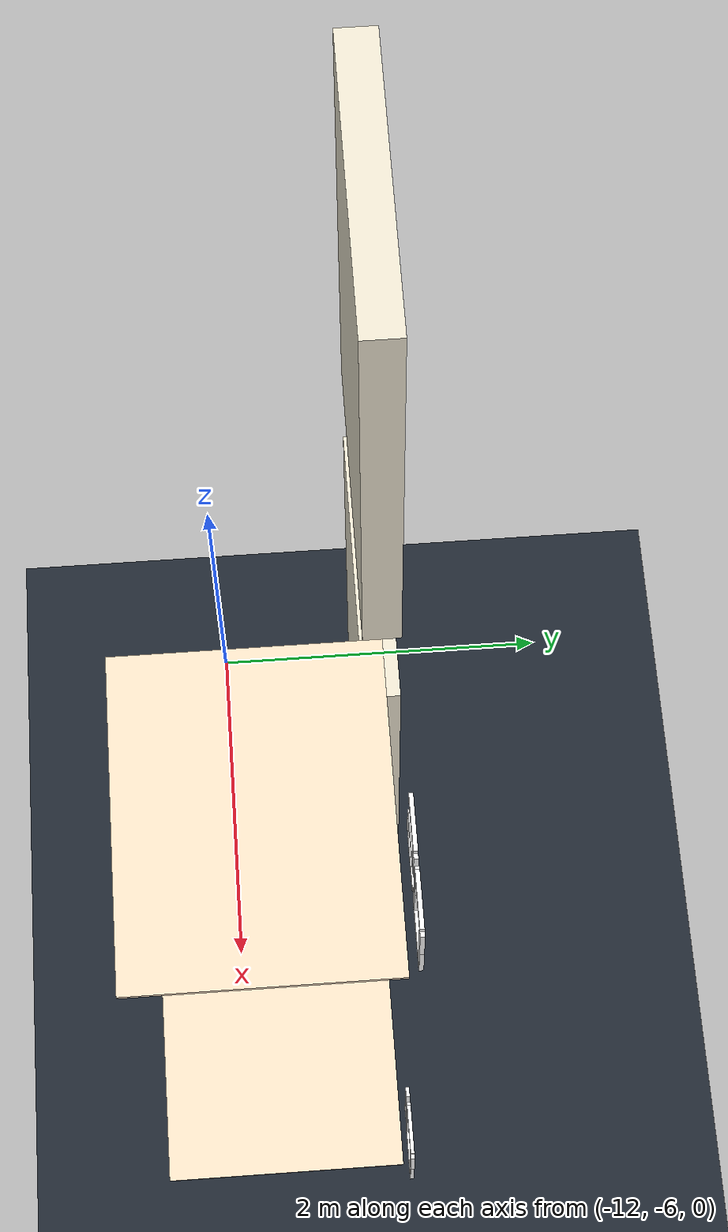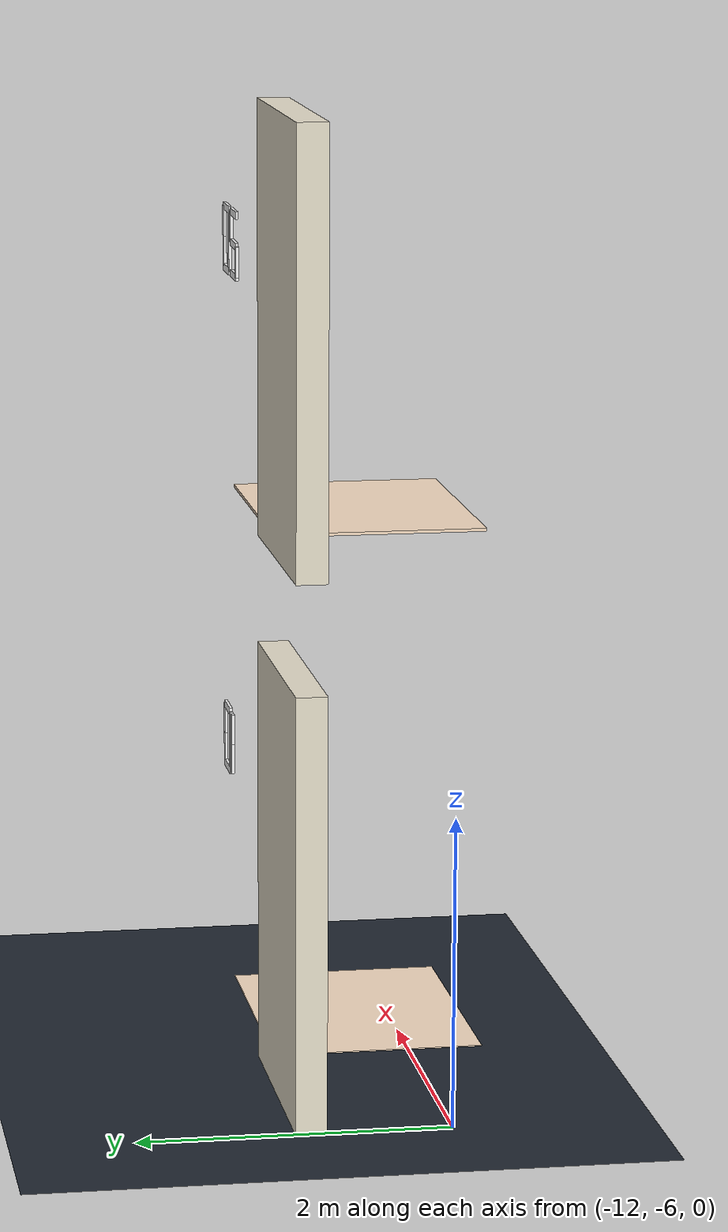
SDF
<sdf version="1.6">
 <world name="hotel_two_floor">
  <model name="ground_plane">
   <static>true</static>
   <link name="link">
    <collision name="col">
     <geometry><plane><normal>0 0 1</normal><size>100 100</size></plane></geometry>
    </collision>
    <visual name="vis">
     <geometry><plane><normal>0 0 1</normal><size>100 100</size></plane></geometry>
     <material><ambient>0.13 0.16 0.20 1</ambient><diffuse>0.13 0.16 0.20 1</diffuse></material>
    </visual>
   </link>
  </model>
  <model name="f1_seg_s_0">
   <static>true</static>
   <pose>-11.2000 -5.1000 1.4000 0 0 0</pose>
   <link name="link">
    <collision name="col"><geometry><box><size>1.6000 0.2000 2.8000</size></box></geometry></collision>
    <visual name="vis">
     <geometry><box><size>1.6000 0.2000 2.8000</size></box></geometry>
     <material>
      <ambient>0.93 0.90 0.82 1</ambient>
      <diffuse>0.93 0.90 0.82 1</diffuse>
      <specular>0.10 0.10 0.10 1</specular>
     </material>
    </visual>
   </link>
  </model>
  <model name="f1_pad_s_0">
   <static>true</static>
   <pose>-9.5000 -5.8000 -0.0100 0 0 0</pose>
   <link name="link">
    <visual name="vis">
     <geometry><box><size>1.8000 1.4000 0.0200</size></box></geometry>
     <material>
      <ambient>0.99 0.89 0.78 1</ambient>
      <diffuse>0.99 0.89 0.78 1</diffuse>
      <specular>0.10 0.10 0.10 1</specular>
     </material>
    </visual>
   </link>
  </model>
  <model name="f1_room_s_101_0_b">
   <static>true</static>
   <pose>-8.5100 -5.1000 1.7550 0 0 0</pose>
   <link name="link">
    <visual name="vis">
     <geometry><box><size>0.0500 0.0200 0.2100</size></box></geometry>
     <material>
      <ambient>0.98 0.98 0.98 1</ambient>
      <diffuse>0.98 0.98 0.98 1</diffuse>
      <specular>0.20 0.20 0.20 1</specular>
     </material>
    </visual>
   </link>
  </model>
  <model name="f1_room_s_101_0_c">
   <static>true</static>
   <pose>-8.5100 -5.1000 1.5450 0 0 0</pose>
   <link name="link">
    <visual name="vis">
     <geometry><box><size>0.0500 0.0200 0.2100</size></box></geometry>
     <material>
      <ambient>0.98 0.98 0.98 1</ambient>
      <diffuse>0.98 0.98 0.98 1</diffuse>
      <specular>0.20 0.20 0.20 1</specular>
     </material>
    </visual>
   </link>
  </model>
  <model name="f1_room_s_101_1_a">
   <static>true</static>
   <pose>-8.3000 -5.1000 1.8600 0 0 0</pose>
   <link name="link">
    <visual name="vis">
     <geometry><box><size>0.2600 0.0200 0.0500</size></box></geometry>
     <material>
      <ambient>0.98 0.98 0.98 1</ambient>
      <diffuse>0.98 0.98 0.98 1</diffuse>
      <specular>0.20 0.20 0.20 1</specular>
     </material>
    </visual>
   </link>
  </model>
  <model name="f1_room_s_101_1_b">
   <static>true</static>
   <pose>-8.1700 -5.1000 1.7550 0 0 0</pose>
   <link name="link">
    <visual name="vis">
     <geometry><box><size>0.0500 0.0200 0.2100</size></box></geometry>
     <material>
      <ambient>0.98 0.98 0.98 1</ambient>
      <diffuse>0.98 0.98 0.98 1</diffuse>
      <specular>0.20 0.20 0.20 1</specular>
     </material>
    </visual>
   </link>
  </model>
  <model name="f1_room_s_101_1_c">
   <static>true</static>
   <pose>-8.1700 -5.1000 1.5450 0 0 0</pose>
   <link name="link">
    <visual name="vis">
     <geometry><box><size>0.0500 0.0200 0.2100</size></box></geometry>
     <material>
      <ambient>0.98 0.98 0.98 1</ambient>
      <diffuse>0.98 0.98 0.98 1</diffuse>
      <specular>0.20 0.20 0.20 1</specular>
     </material>
    </visual>
   </link>
  </model>
  <model name="f1_room_s_101_1_f">
   <static>true</static>
   <pose>-8.4300 -5.1000 1.7550 0 0 0</pose>
   <link name="link">
    <visual name="vis">
     <geometry><box><size>0.0500 0.0200 0.2100</size></box></geometry>
     <material>
      <ambient>0.98 0.98 0.98 1</ambient>
      <diffuse>0.98 0.98 0.98 1</diffuse>
      <specular>0.20 0.20 0.20 1</specular>
     </material>
    </visual>
   </link>
  </model>
  <model name="f1_room_s_101_1_e">
   <static>true</static>
   <pose>-8.4300 -5.1000 1.5450 0 0 0</pose>
   <link name="link">
    <visual name="vis">
     <geometry><box><size>0.0500 0.0200 0.2100</size></box></geometry>
     <material>
      <ambient>0.98 0.98 0.98 1</ambient>
      <diffuse>0.98 0.98 0.98 1</diffuse>
      <specular>0.20 0.20 0.20 1</specular>
     </material>
    </visual>
   </link>
  </model>
  <model name="f1_room_s_101_1_d">
   <static>true</static>
   <pose>-8.3000 -5.1000 1.4400 0 0 0</pose>
   <link name="link">
    <visual name="vis">
     <geometry><box><size>0.2600 0.0200 0.0500</size></box></geometry>
     <material>
      <ambient>0.98 0.98 0.98 1</ambient>
      <diffuse>0.98 0.98 0.98 1</diffuse>
      <specular>0.20 0.20 0.20 1</specular>
     </material>
    </visual>
   </link>
  </model>
  <model name="f2_seg_s_0">
   <static>true</static>
   <pose>-11.2000 -5.1000 4.9000 0 0 0</pose>
   <link name="link">
    <collision name="col"><geometry><box><size>1.6000 0.2000 2.8000</size></box></geometry></collision>
    <visual name="vis">
     <geometry><box><size>1.6000 0.2000 2.8000</size></box></geometry>
     <material>
      <ambient>0.93 0.90 0.82 1</ambient>
      <diffuse>0.93 0.90 0.82 1</diffuse>
      <specular>0.10 0.10 0.10 1</specular>
     </material>
    </visual>
   </link>
  </model>
  <model name="f2_pad_s_0">
   <static>true</static>
   <pose>-9.5000 -5.8000 3.4900 0 0 0</pose>
   <link name="link">
    <visual name="vis">
     <geometry><box><size>1.8000 1.4000 0.0200</size></box></geometry>
     <material>
      <ambient>0.99 0.89 0.78 1</ambient>
      <diffuse>0.99 0.89 0.78 1</diffuse>
      <specular>0.10 0.10 0.10 1</specular>
     </material>
    </visual>
   </link>
  </model>
  <model name="f2_room_s_201_0_a">
   <static>true</static>
   <pose>-8.6400 -5.1000 5.3600 0 0 0</pose>
   <link name="link">
    <visual name="vis">
     <geometry><box><size>0.2600 0.0200 0.0500</size></box></geometry>
     <material>
      <ambient>0.98 0.98 0.98 1</ambient>
      <diffuse>0.98 0.98 0.98 1</diffuse>
      <specular>0.20 0.20 0.20 1</specular>
     </material>
    </visual>
   </link>
  </model>
  <model name="f2_room_s_201_0_b">
   <static>true</static>
   <pose>-8.5100 -5.1000 5.2550 0 0 0</pose>
   <link name="link">
    <visual name="vis">
     <geometry><box><size>0.0500 0.0200 0.2100</size></box></geometry>
     <material>
      <ambient>0.98 0.98 0.98 1</ambient>
      <diffuse>0.98 0.98 0.98 1</diffuse>
      <specular>0.20 0.20 0.20 1</specular>
     </material>
    </visual>
   </link>
  </model>
  <model name="f2_room_s_201_0_g">
   <static>true</static>
   <pose>-8.6400 -5.1000 5.1500 0 0 0</pose>
   <link name="link">
    <visual name="vis">
     <geometry><box><size>0.2600 0.0200 0.0500</size></box></geometry>
     <material>
      <ambient>0.98 0.98 0.98 1</ambient>
      <diffuse>0.98 0.98 0.98 1</diffuse>
      <specular>0.20 0.20 0.20 1</specular>
     </material>
    </visual>
   </link>
  </model>
  <model name="f2_room_s_201_0_e">
   <static>true</static>
   <pose>-8.7700 -5.1000 5.0450 0 0 0</pose>
   <link name="link">
    <visual name="vis">
     <geometry><box><size>0.0500 0.0200 0.2100</size></box></geometry>
     <material>
      <ambient>0.98 0.98 0.98 1</ambient>
      <diffuse>0.98 0.98 0.98 1</diffuse>
      <specular>0.20 0.20 0.20 1</specular>
     </material>
    </visual>
   </link>
  </model>
  <model name="f2_room_s_201_0_d">
   <static>true</static>
   <pose>-8.6400 -5.1000 4.9400 0 0 0</pose>
   <link name="link">
    <visual name="vis">
     <geometry><box><size>0.2600 0.0200 0.0500</size></box></geometry>
     <material>
      <ambient>0.98 0.98 0.98 1</ambient>
      <diffuse>0.98 0.98 0.98 1</diffuse>
      <specular>0.20 0.20 0.20 1</specular>
     </material>
    </visual>
   </link>
  </model>
  <model name="f2_room_s_201_1_a">
   <static>true</static>
   <pose>-8.3000 -5.1000 5.3600 0 0 0</pose>
   <link name="link">
    <visual name="vis">
     <geometry><box><size>0.2600 0.0200 0.0500</size></box></geometry>
     <material>
      <ambient>0.98 0.98 0.98 1</ambient>
      <diffuse>0.98 0.98 0.98 1</diffuse>
      <specular>0.20 0.20 0.20 1</specular>
     </material>
    </visual>
   </link>
  </model>
  <model name="f2_room_s_201_1_b">
   <static>true</static>
   <pose>-8.1700 -5.1000 5.2550 0 0 0</pose>
   <link name="link">
    <visual name="vis">
     <geometry><box><size>0.0500 0.0200 0.2100</size></box></geometry>
     <material>
      <ambient>0.98 0.98 0.98 1</ambient>
      <diffuse>0.98 0.98 0.98 1</diffuse>
      <specular>0.20 0.20 0.20 1</specular>
     </material>
    </visual>
   </link>
  </model>
  <model name="f2_room_s_201_1_c">
   <static>true</static>
   <pose>-8.1700 -5.1000 5.0450 0 0 0</pose>
   <link name="link">
    <visual name="vis">
     <geometry><box><size>0.0500 0.0200 0.2100</size></box></geometry>
     <material>
      <ambient>0.98 0.98 0.98 1</ambient>
      <diffuse>0.98 0.98 0.98 1</diffuse>
      <specular>0.20 0.20 0.20 1</specular>
     </material>
    </visual>
   </link>
  </model>
  <model name="f2_room_s_201_1_f">
   <static>true</static>
   <pose>-8.4300 -5.1000 5.2550 0 0 0</pose>
   <link name="link">
    <visual name="vis">
     <geometry><box><size>0.0500 0.0200 0.2100</size></box></geometry>
     <material>
      <ambient>0.98 0.98 0.98 1</ambient>
      <diffuse>0.98 0.98 0.98 1</diffuse>
      <specular>0.20 0.20 0.20 1</specular>
     </material>
    </visual>
   </link>
  </model>
  <model name="f2_room_s_201_1_e">
   <static>true</static>
   <pose>-8.4300 -5.1000 5.0450 0 0 0</pose>
   <link name="link">
    <visual name="vis">
     <geometry><box><size>0.0500 0.0200 0.2100</size></box></geometry>
     <material>
      <ambient>0.98 0.98 0.98 1</ambient>
      <diffuse>0.98 0.98 0.98 1</diffuse>
      <specular>0.20 0.20 0.20 1</specular>
     </material>
    </visual>
   </link>
  </model>
  <model name="f2_room_s_201_1_d">
   <static>true</static>
   <pose>-8.3000 -5.1000 4.9400 0 0 0</pose>
   <link name="link">
    <visual name="vis">
     <geometry><box><size>0.2600 0.0200 0.0500</size></box></geometry>
     <material>
      <ambient>0.98 0.98 0.98 1</ambient>
      <diffuse>0.98 0.98 0.98 1</diffuse>
      <specular>0.20 0.20 0.20 1</specular>
     </material>
    </visual>
   </link>
  </model>
 </world>
</sdf>
